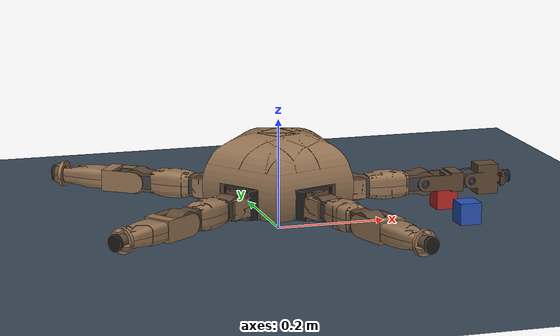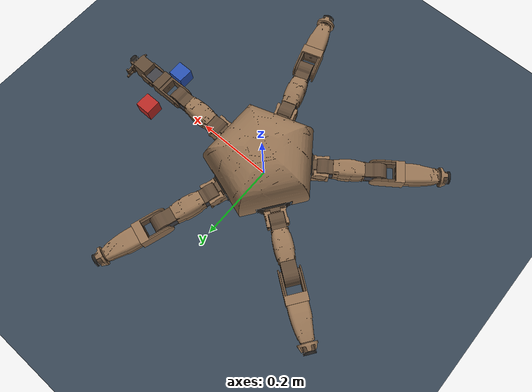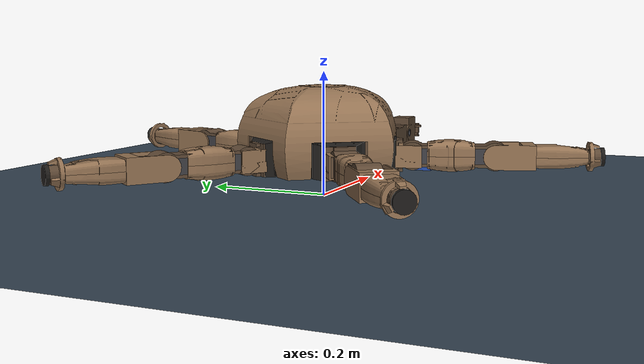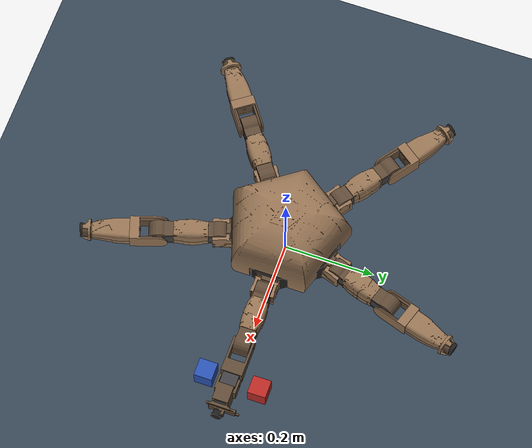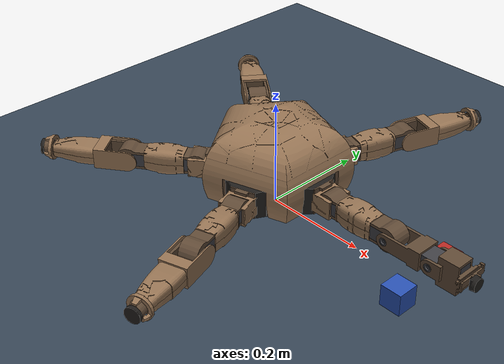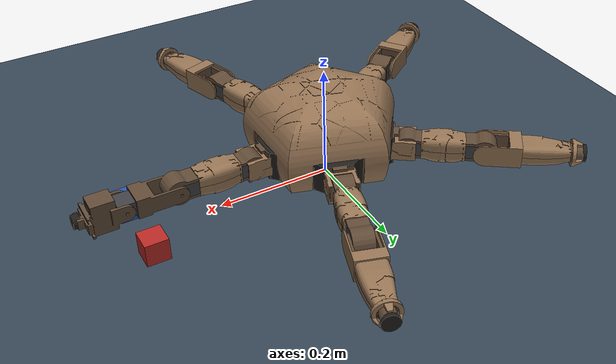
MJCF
<mujoco model="rocky_cubes">
  <include file="rocky_manip.xml"/>

  <option timestep="0.005" iterations="10" ls_iterations="20" cone="elliptic" impratio="10"/>
  <statistic center="0 0 0.1" extent="1.2"/>

  <visual>
    <global offwidth="1280" offheight="960"/>
    <headlight diffuse="0.6 0.6 0.6" ambient="0.35 0.35 0.35" specular="0.1 0.1 0.1"/>
    <rgba haze="0.15 0.25 0.35 1"/>
    <quality shadowsize="4096"/>
  </visual>

  <asset>
    <texture type="skybox" builtin="gradient" rgb1="0.3 0.5 0.7" rgb2="0 0 0" width="512" height="3072"/>
    <texture type="2d" name="grid" builtin="checker" rgb1="0.24 0.30 0.36" rgb2="0.18 0.24 0.30"
             width="300" height="300"/>
    <material name="grid" texture="grid" texrepeat="10 10" texuniform="true" reflectance="0.05"/>
    <material name="cube_red" rgba="0.72 0.16 0.14 1" specular="0.3" shininess="0.3"/>
    <material name="cube_blue" rgba="0.16 0.32 0.70 1" specular="0.3" shininess="0.3"/>
  </asset>

  <worldbody>
    <light pos="1.2 0.6 2.0" dir="-0.4 -0.2 -1" directional="true" diffuse="0.5 0.5 0.5"/>
    <light pos="-0.8 -0.8 1.6" dir="0.3 0.3 -1" directional="true" diffuse="0.25 0.25 0.25"/>
    <geom name="floor" type="plane" size="0 0 0.05" material="grid"
          condim="6" friction="1.0 0.02 0.001" priority="0"/>

    <!-- 40 mm cubes: the jaws open to 60 mm, so there is 10 mm of clearance a
         side. ~35 g each, in the range of a printed or hardwood block. -->
    <body name="cube_red" pos="0.34 0.06 0.02">
      <freejoint name="cube_red_free"/>
      <geom name="cube_red" type="box" size="0.02 0.02 0.02" material="cube_red"
            mass="0.035" condim="6" friction="1.1 0.03 0.001" solimp="0.95 0.99 0.001"/>
      <site name="cube_red_site" pos="0 0 0" size="0.004" rgba="1 0 0 0.4" group="4"/>
    </body>

    <body name="cube_blue" pos="0.34 -0.06 0.02">
      <freejoint name="cube_blue_free"/>
      <geom name="cube_blue" type="box" size="0.02 0.02 0.02" material="cube_blue"
            mass="0.035" condim="6" friction="1.1 0.03 0.001" solimp="0.95 0.99 0.001"/>
      <site name="cube_blue_site" pos="0 0 0" size="0.004" rgba="0 0 1 0.4" group="4"/>
    </body>

    <camera name="scene" pos="1.1 -0.9 0.7" xyaxes="0.63 0.78 0 -0.33 0.27 0.90"/>
    <!-- Keeps the robot centred however it parks; scripts/stack_demo.py cuts to
         this one at the handoff, where all the interesting motion is. -->
    <camera name="closeup" mode="targetbody" target="base" pos="0.78 -0.52 0.36" fovy="50"/>
    <!-- Tracks the hand rather than the body, so the grasp stays centred
         instead of sitting in the corner while the carapace fills the frame. -->
    <camera name="hand" mode="targetbody" target="gripper_0" pos="0.72 -0.46 0.30" fovy="46"/>
  </worldbody>

  <!-- Leg 0's foot sphere is a walking geom sitting between the open jaws. It
       has no business touching a cube the gripper is trying to close on; the
       jaw pads and the gripper hull still do. -->
  <contact>
    <exclude body1="foot_0_tip" body2="cube_red"/>
    <exclude body1="foot_0_tip" body2="cube_blue"/>
  </contact>

  <!-- The 16 walking servos. The two jaw actuators come from rocky_manip.xml. -->
  <actuator>
    <position name="sweep_0" joint="sweep_0" kp="23.495" kv="1.4957" forcerange="-2.90 2.90" ctrlrange="-3.15 3.15"/>
    <position name="lift_0"  joint="lift_0"  kp="23.495" kv="1.4957" forcerange="-2.90 2.90" ctrlrange="-3.15 3.15"/>
    <position name="elbow_0" joint="elbow_0" kp="23.495" kv="1.4957" forcerange="-2.90 2.90" ctrlrange="-3.15 3.15"/>
    <position name="wrist_0" joint="wrist_0" kp="23.495" kv="1.4957" forcerange="-2.90 2.90" ctrlrange="-3.15 3.15"/>
    <position name="sweep_1" joint="sweep_1" kp="23.495" kv="1.4957" forcerange="-2.90 2.90" ctrlrange="-3.15 3.15"/>
    <position name="lift_1"  joint="lift_1"  kp="23.495" kv="1.4957" forcerange="-2.90 2.90" ctrlrange="-3.15 3.15"/>
    <position name="elbow_1" joint="elbow_1" kp="23.495" kv="1.4957" forcerange="-2.90 2.90" ctrlrange="-3.15 3.15"/>
    <position name="sweep_2" joint="sweep_2" kp="23.495" kv="1.4957" forcerange="-2.90 2.90" ctrlrange="-3.15 3.15"/>
    <position name="lift_2"  joint="lift_2"  kp="23.495" kv="1.4957" forcerange="-2.90 2.90" ctrlrange="-3.15 3.15"/>
    <position name="elbow_2" joint="elbow_2" kp="23.495" kv="1.4957" forcerange="-2.90 2.90" ctrlrange="-3.15 3.15"/>
    <position name="sweep_3" joint="sweep_3" kp="23.495" kv="1.4957" forcerange="-2.90 2.90" ctrlrange="-3.15 3.15"/>
    <position name="lift_3"  joint="lift_3"  kp="23.495" kv="1.4957" forcerange="-2.90 2.90" ctrlrange="-3.15 3.15"/>
    <position name="elbow_3" joint="elbow_3" kp="23.495" kv="1.4957" forcerange="-2.90 2.90" ctrlrange="-3.15 3.15"/>
    <position name="sweep_4" joint="sweep_4" kp="23.495" kv="1.4957" forcerange="-2.90 2.90" ctrlrange="-3.15 3.15"/>
    <position name="lift_4"  joint="lift_4"  kp="23.495" kv="1.4957" forcerange="-2.90 2.90" ctrlrange="-3.15 3.15"/>
    <position name="elbow_4" joint="elbow_4" kp="23.495" kv="1.4957" forcerange="-2.90 2.90" ctrlrange="-3.15 3.15"/>
  </actuator>
  <keyframe>
    <key name="start" qpos="0 0 0.04503 1 0 0 0 0 -0.872664626 2.129301687 0 0 0 0 -0.872664626 2.129301687 0 -0.872664626 2.129301687 0 -0.872664626 2.129301687 0 -0.872664626 2.129301687 0.34 0.06 0.02 1 0 0 0 0.34 -0.06 0.02 1 0 0 0"/>
  </keyframe>
</mujoco>
